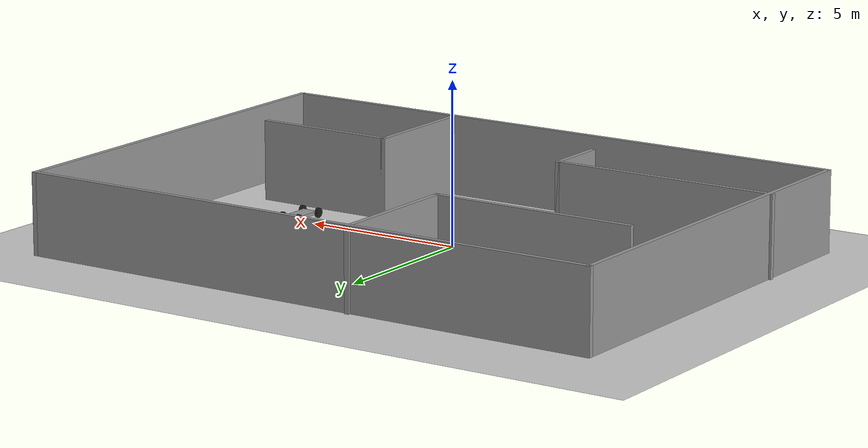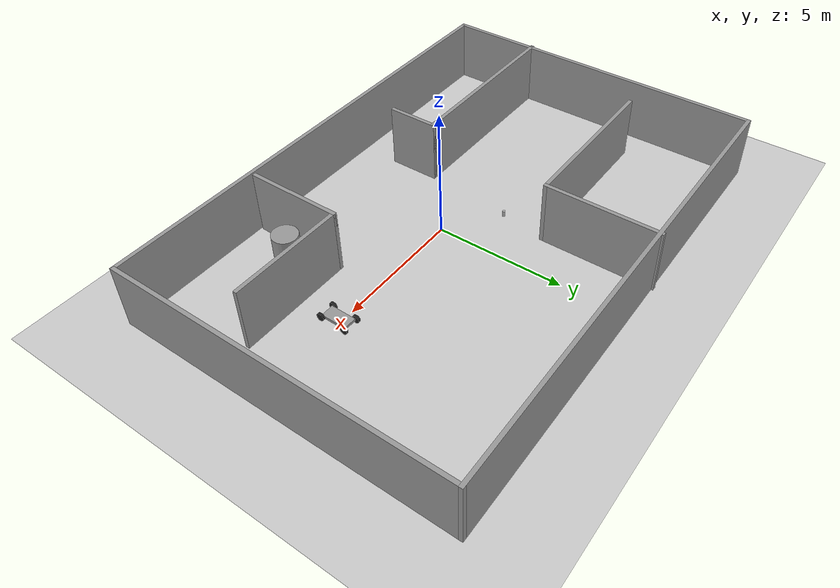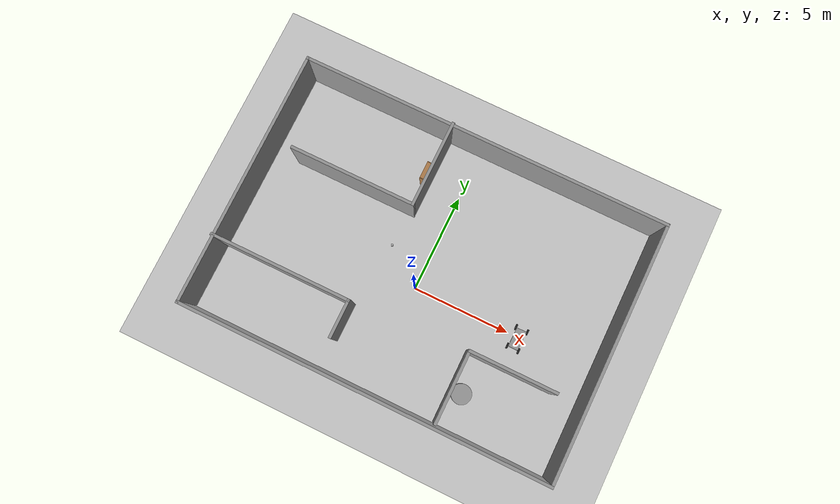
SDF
<sdf version="1.7">
 <world name="default">
  <light name="sun" type="directional">
   <pose>0 0 10 0 -0 0</pose>
   <diffuse>0.8 0.8 0.8 1</diffuse>
   <specular>0.2 0.2 0.2 1</specular>
   <attenuation>
    <range>1000</range>
    <constant>0.9</constant>
    <linear>0.01</linear>
    <quadratic>0.001</quadratic>
   </attenuation>
   <direction>-0.5 0.1 -0.9</direction>
   <spot><inner_angle>0</inner_angle><outer_angle>0</outer_angle><falloff>0</falloff></spot>
  </light>
  <model name="ground_plane">
   <static>1</static>
   <link name="link">
    <collision name="collision">
     <geometry><plane><normal>0 0 1</normal><size>100 100</size></plane></geometry>
     <surface><friction><ode><mu>100</mu><mu2>50</mu2></ode></friction></surface>
    </collision>
    <visual name="visual">
     <cast_shadows>0</cast_shadows>
     <geometry><plane><normal>0 0 1</normal><size>100 100</size></plane></geometry>
     <material>
      <script><uri>file://media/materials/scripts/gazebo.material</uri><name>Gazebo/Grey</name></script>
     </material>
    </visual>
   </link>
  </model>
  <gravity>0 0 -9.8</gravity>
  <magnetic_field>6e-06 2.3e-05 -4.2e-05</magnetic_field>
  <atmosphere type="adiabatic"/>
  <physics type="ode">
   <max_step_size>0.001</max_step_size>
   <real_time_factor>1</real_time_factor>
   <real_time_update_rate>1000</real_time_update_rate>
  </physics>
  <scene><ambient>0.4 0.4 0.4 1</ambient><background>0.7 0.7 0.7 1</background><shadows>1</shadows></scene>
  <audio><device>default</device></audio>
  <spherical_coordinates>
   <surface_model>EARTH_WGS84</surface_model>
   <latitude_deg>0</latitude_deg>
   <longitude_deg>0</longitude_deg>
   <elevation>0</elevation>
   <heading_deg>0</heading_deg>
  </spherical_coordinates>
  <model name="room">
   <pose>0.00505 1.04085 0 0 -0 0</pose>
   <link name="Wall_14">
    <collision name="Wall_14_Collision">
     <geometry><box><size>13.25 0.15 2.5</size></box></geometry>
     <pose>0 0 1.25 0 -0 0</pose>
    </collision>
    <visual name="Wall_14_Visual">
     <pose>0 0 1.25 0 -0 0</pose>
     <geometry><box><size>13.25 0.15 2.5</size></box></geometry>
     <material>
      <script><uri>file://media/materials/scripts/gazebo.material</uri><name>Gazebo/Grey</name></script>
      <ambient>1 1 1 1</ambient>
     </material>
     <meta><layer>0</layer></meta>
    </visual>
    <pose>-9.38962 -0.035378 0 0 -0 -1.5708</pose>
   </link>
   <link name="Wall_15">
    <collision name="Wall_15_Collision">
     <geometry><box><size>19 0.15 2.5</size></box></geometry>
     <pose>0 0 1.25 0 -0 0</pose>
    </collision>
    <visual name="Wall_15_Visual">
     <pose>0 0 1.25 0 -0 0</pose>
     <geometry><box><size>19 0.15 2.5</size></box></geometry>
     <material>
      <script><uri>file://media/materials/scripts/gazebo.material</uri><name>Gazebo/Grey</name></script>
      <ambient>1 1 1 1</ambient>
     </material>
     <meta><layer>0</layer></meta>
    </visual>
    <pose>0.035378 -6.58538 0 0 -0 0</pose>
   </link>
   <link name="Wall_16">
    <collision name="Wall_16_Collision">
     <geometry><box><size>13.25 0.15 2.5</size></box></geometry>
     <pose>0 0 1.25 0 -0 0</pose>
    </collision>
    <visual name="Wall_16_Visual">
     <pose>0 0 1.25 0 -0 0</pose>
     <geometry><box><size>13.25 0.15 2.5</size></box></geometry>
     <material>
      <script><uri>file://media/materials/scripts/gazebo.material</uri><name>Gazebo/Grey</name></script>
      <ambient>1 1 1 1</ambient>
     </material>
     <meta><layer>0</layer></meta>
    </visual>
    <pose>9.46038 -0.035378 0 0 -0 1.5708</pose>
   </link>
   <link name="Wall_17">
    <collision name="Wall_17_Collision">
     <geometry><box><size>19 0.15 2.5</size></box></geometry>
     <pose>0 0 1.25 0 -0 0</pose>
    </collision>
    <visual name="Wall_17_Visual">
     <pose>0 0 1.25 0 -0 0</pose>
     <geometry><box><size>19 0.15 2.5</size></box></geometry>
     <material>
      <script><uri>file://media/materials/scripts/gazebo.material</uri><name>Gazebo/Grey</name></script>
      <ambient>1 1 1 1</ambient>
     </material>
     <meta><layer>0</layer></meta>
    </visual>
    <pose>0.035378 6.51462 0 0 -0 3.14159</pose>
   </link>
   <link name="Wall_19">
    <collision name="Wall_19_Collision">
     <geometry><box><size>4.5 0.15 2.5</size></box></geometry>
     <pose>0 0 1.25 0 -0 0</pose>
    </collision>
    <visual name="Wall_19_Visual">
     <pose>0 0 1.25 0 -0 0</pose>
     <geometry><box><size>4.5 0.15 2.5</size></box></geometry>
     <material>
      <script><uri>file://media/materials/scripts/gazebo.material</uri><name>Gazebo/Grey</name></script>
      <ambient>1 1 1 1</ambient>
     </material>
     <meta><layer>0</layer></meta>
    </visual>
    <pose>-1.6771 4.41038 0 0 -0 -1.5708</pose>
   </link>
   <link name="Wall_20">
    <collision name="Wall_20_Collision">
     <geometry><box><size>6.5 0.15 2.5</size></box></geometry>
     <pose>0 0 1.25 0 -0 0</pose>
    </collision>
    <visual name="Wall_20_Visual">
     <pose>0 0 1.25 0 -0 0</pose>
     <geometry><box><size>6.5 0.15 2.5</size></box></geometry>
     <material>
      <script><uri>file://media/materials/scripts/gazebo.material</uri><name>Gazebo/Grey</name></script>
      <ambient>1 1 1 1</ambient>
     </material>
     <meta><layer>0</layer></meta>
    </visual>
    <pose>-4.8521 2.23538 0 0 -0 3.14159</pose>
   </link>
   <link name="Wall_22">
    <collision name="Wall_22_Collision">
     <geometry><box><size>7.25 0.15 2.5</size></box></geometry>
     <pose>0 0 1.25 0 -0 0</pose>
    </collision>
    <visual name="Wall_22_Visual">
     <pose>0 0 1.25 0 -0 0</pose>
     <geometry><box><size>7.25 0.15 2.5</size></box></geometry>
     <material>
      <script><uri>file://media/materials/scripts/gazebo.material</uri><name>Gazebo/Grey</name></script>
      <ambient>1 1 1 1</ambient>
     </material>
     <meta><layer>0</layer></meta>
    </visual>
    <pose>-5.91038 -3.10834 0 0 -0 0</pose>
   </link>
   <link name="Wall_23">
    <collision name="Wall_23_Collision">
     <geometry><box><size>2 0.15 2.5</size></box></geometry>
     <pose>0 0 1.25 0 -0 0</pose>
    </collision>
    <visual name="Wall_23_Visual">
     <pose>0 0 1.25 0 -0 0</pose>
     <geometry><box><size>2 0.15 2.5</size></box></geometry>
     <material>
      <script><uri>file://media/materials/scripts/gazebo.material</uri><name>Gazebo/Grey</name></script>
      <ambient>1 1 1 1</ambient>
     </material>
     <meta><layer>0</layer></meta>
    </visual>
    <pose>-2.36038 -4.03334 0 0 -0 -1.5708</pose>
   </link>
   <link name="Wall_25">
    <collision name="Wall_25_Collision">
     <geometry><box><size>3.75 0.15 2.5</size></box></geometry>
     <pose>0 0 1.25 0 -0 0</pose>
    </collision>
    <visual name="Wall_25_Visual">
     <pose>0 0 1.25 0 -0 0</pose>
     <geometry><box><size>3.75 0.15 2.5</size></box></geometry>
     <material>
      <script><uri>file://media/materials/scripts/gazebo.material</uri><name>Gazebo/Grey</name></script>
      <ambient>1 1 1 1</ambient>
     </material>
     <meta><layer>0</layer></meta>
    </visual>
    <pose>3.62968 -4.56316 0 0 -0 1.5708</pose>
   </link>
   <link name="Wall_26">
    <collision name="Wall_26_Collision">
     <geometry><box><size>4.5 0.15 2.5</size></box></geometry>
     <pose>0 0 1.25 0 -0 0</pose>
    </collision>
    <visual name="Wall_26_Visual">
     <pose>0 0 1.25 0 -0 0</pose>
     <geometry><box><size>4.5 0.15 2.5</size></box></geometry>
     <material>
      <script><uri>file://media/materials/scripts/gazebo.material</uri><name>Gazebo/Grey</name></script>
      <ambient>1 1 1 1</ambient>
     </material>
     <meta><layer>0</layer></meta>
    </visual>
    <pose>5.80468 -2.76316 0 0 -0 0</pose>
   </link>
   <static>1</static>
  </model>
  <model name="beer">
   <link name="link">
    <pose>0 0 0.115 0 -0 0</pose>
    <inertial>
     <mass>0.39</mass>
     <inertia><ixx>0.00058</ixx><ixy>0</ixy><ixz>0</ixz><iyy>0.00058</iyy><iyz>0</iyz><izz>0.00019</izz></inertia>
    </inertial>
    <collision name="collision">
     <geometry><cylinder><radius>0.055</radius><length>0.23</length></cylinder></geometry>
    </collision>
    <visual name="visual">
     <geometry><cylinder><radius>0.055</radius><length>0.23</length></cylinder></geometry>
     <material>
      <script>
       <uri>model://beer/materials/scripts</uri>
       <uri>model://beer/materials/textures</uri>
       <name>Beer/Diffuse</name>
      </script>
     </material>
    </visual>
   </link>
   <pose>-1.96527 1.43746 -2e-06 1e-06 -0 -3.5e-05</pose>
  </model>
  <model name="unit_cylinder_0">
   <pose>4.20974 -3.64611 0.499991 -0 -0 -3e-06</pose>
   <link name="link">
    <inertial>
     <mass>1</mass>
     <inertia><ixx>0.145833</ixx><ixy>0</ixy><ixz>0</ixz><iyy>0.145833</iyy><iyz>0</iyz><izz>0.125</izz></inertia>
    </inertial>
    <collision name="collision">
     <geometry><cylinder><radius>0.5</radius><length>1</length></cylinder></geometry>
    </collision>
    <visual name="visual">
     <geometry><cylinder><radius>0.5</radius><length>1</length></cylinder></geometry>
     <material>
      <script><name>Gazebo/Grey</name><uri>file://media/materials/scripts/gazebo.material</uri></script>
     </material>
    </visual>
   </link>
  </model>
  <model name="bookshelf">
   <static>1</static>
   <link name="link">
    <inertial><mass>1</mass></inertial>
    <collision name="back">
     <pose>0 0.005 0.6 0 -0 0</pose>
     <geometry><box><size>0.9 0.01 1.2</size></box></geometry>
    </collision>
    <visual name="visual1">
     <pose>0 0.005 0.6 0 -0 0</pose>
     <geometry><box><size>0.9 0.01 1.2</size></box></geometry>
     <material>
      <script><uri>file://media/materials/scripts/gazebo.material</uri><name>Gazebo/Wood</name></script>
     </material>
    </visual>
    <collision name="left_side">
     <pose>0.45 -0.195 0.6 0 -0 0</pose>
     <geometry><box><size>0.02 0.4 1.2</size></box></geometry>
    </collision>
    <visual name="visual2">
     <pose>0.45 -0.195 0.6 0 -0 0</pose>
     <geometry><box><size>0.02 0.4 1.2</size></box></geometry>
     <material>
      <script><uri>file://media/materials/scripts/gazebo.material</uri><name>Gazebo/Wood</name></script>
     </material>
    </visual>
    <collision name="right_side">
     <pose>-0.45 -0.195 0.6 0 -0 0</pose>
     <geometry><box><size>0.02 0.4 1.2</size></box></geometry>
    </collision>
    <visual name="visual3">
     <pose>-0.45 -0.195 0.6 0 -0 0</pose>
     <geometry><box><size>0.02 0.4 1.2</size></box></geometry>
     <material>
      <script><uri>file://media/materials/scripts/gazebo.material</uri><name>Gazebo/Wood</name></script>
     </material>
    </visual>
    <collision name="bottom">
     <pose>0 -0.195 0.03 0 -0 0</pose>
     <geometry><box><size>0.88 0.4 0.06</size></box></geometry>
    </collision>
    <visual name="visual4">
     <pose>0 -0.195 0.03 0 -0 0</pose>
     <geometry><box><size>0.88 0.4 0.06</size></box></geometry>
     <material>
      <script><uri>file://media/materials/scripts/gazebo.material</uri><name>Gazebo/Wood</name></script>
     </material>
    </visual>
    <collision name="top">
     <pose>0 -0.195 1.19 0 -0 0</pose>
     <geometry><box><size>0.88 0.4 0.02</size></box></geometry>
    </collision>
    <visual name="visual5">
     <pose>0 -0.195 1.19 0 -0 0</pose>
     <geometry><box><size>0.88 0.4 0.02</size></box></geometry>
     <material>
      <script><uri>file://media/materials/scripts/gazebo.material</uri><name>Gazebo/Wood</name></script>
     </material>
    </visual>
    <collision name="low_shelf">
     <pose>0 -0.195 0.43 0 -0 0</pose>
     <geometry><box><size>0.88 0.4 0.02</size></box></geometry>
    </collision>
    <visual name="visual6">
     <pose>0 -0.195 0.43 0 -0 0</pose>
     <geometry><box><size>0.88 0.4 0.02</size></box></geometry>
     <material>
      <script><uri>file://media/materials/scripts/gazebo.material</uri><name>Gazebo/Wood</name></script>
     </material>
    </visual>
    <collision name="high_shelf">
     <pose>0 -0.195 0.8 0 -0 0</pose>
     <geometry><box><size>0.88 0.4 0.02</size></box></geometry>
    </collision>
    <visual name="visual7">
     <pose>0 -0.195 0.8 0 -0 0</pose>
     <geometry><box><size>0.88 0.4 0.02</size></box></geometry>
     <material>
      <script><uri>file://media/materials/scripts/gazebo.material</uri><name>Gazebo/Wood</name></script>
     </material>
    </visual>
   </link>
   <pose>-1.71623 5.33769 0 0 0 -1.57147</pose>
  </model>
  <model name="cart_soft_suspension">
   <link name="chassis">
    <pose>0 0 0.15 0 -0 0</pose>
    <inertial>
     <pose>0.1 0 0 0 -0 0</pose>
     <mass>10</mass>
     <inertia>
      <ixx>0.216667</ixx>
      <iyy>0.841667</iyy>
      <izz>1.04167</izz>
      <ixy>0</ixy>
      <ixz>0</ixz>
      <iyz>0</iyz>
     </inertia>
    </inertial>
    <collision name="collision"><geometry><box><size>1 0.5 0.1</size></box></geometry></collision>
    <visual name="visual">
     <geometry><box><size>1 0.5 0.1</size></box></geometry>
     <material>
      <script><uri>file://media/materials/scripts/gazebo.material</uri><name>Gazebo/Grey</name></script>
     </material>
    </visual>
   </link>
   <link name="susp_front_right">
    <pose>0.5 -0.298 0.15 0 -0 0</pose>
    <inertial>
     <mass>0.5</mass>
     <inertia>
      <ixx>0.000208333</ixx>
      <iyy>0.000208333</iyy>
      <izz>0.000208333</izz>
      <ixy>0</ixy>
      <ixz>0</ixz>
      <iyz>0</iyz>
     </inertia>
    </inertial>
    <collision name="collision"><geometry><box><size>0.05 0.05 0.05</size></box></geometry></collision>
    <visual name="visual">
     <geometry><box><size>0.05 0.05 0.05</size></box></geometry>
     <material>
      <script><uri>file://media/materials/scripts/gazebo.material</uri><name>Gazebo/Black</name></script>
     </material>
    </visual>
   </link>
   <joint name="susp_front_right_prismatic" type="prismatic">
    <parent>chassis</parent>
    <child>susp_front_right</child>
    <axis>
     <xyz>0 0 -1</xyz>
     <limit><lower>-0.0375</lower><upper>0.0375</upper></limit>
     <dynamics>
      <damping>100</damping>
      <spring_stiffness>2500</spring_stiffness>
      <spring_reference>0.05</spring_reference>
     </dynamics>
    </axis>
    <physics>
     <ode><implicit_spring_damper>1</implicit_spring_damper><limit><cfm>0</cfm><erp>0.2</erp></limit></ode>
    </physics>
   </joint>
   <link name="wheel_front_right">
    <pose>0.5 -0.298 0.15 -1.5708 0 0</pose>
    <inertial>
     <mass>0.5</mass>
     <inertia>
      <ixx>0.00307917</ixx>
      <iyy>0.00307917</iyy>
      <izz>0.005625</izz>
      <ixy>0</ixy>
      <ixz>0</ixz>
      <iyz>0</iyz>
     </inertia>
    </inertial>
    <collision name="collision">
     <geometry><cylinder><radius>0.15</radius><length>0.08</length></cylinder></geometry>
    </collision>
    <visual name="visual">
     <geometry><cylinder><radius>0.15</radius><length>0.08</length></cylinder></geometry>
     <material>
      <script><uri>file://media/materials/scripts/gazebo.material</uri><name>Gazebo/Black</name></script>
     </material>
    </visual>
   </link>
   <joint name="wheel_front_right_spin" type="revolute">
    <parent>susp_front_right</parent>
    <child>wheel_front_right</child>
    <axis>
     <xyz>0 0 1</xyz>
     <limit><lower>-1e+16</lower><upper>1e+16</upper></limit>
     <dynamics><spring_reference>0</spring_reference><spring_stiffness>0</spring_stiffness></dynamics>
    </axis>
   </joint>
   <link name="susp_front_left">
    <pose>0.5 0.298 0.15 0 -0 0</pose>
    <inertial>
     <mass>0.5</mass>
     <inertia>
      <ixx>0.000208333</ixx>
      <iyy>0.000208333</iyy>
      <izz>0.000208333</izz>
      <ixy>0</ixy>
      <ixz>0</ixz>
      <iyz>0</iyz>
     </inertia>
    </inertial>
    <collision name="collision"><geometry><box><size>0.05 0.05 0.05</size></box></geometry></collision>
    <visual name="visual">
     <geometry><box><size>0.05 0.05 0.05</size></box></geometry>
     <material>
      <script><uri>file://media/materials/scripts/gazebo.material</uri><name>Gazebo/Black</name></script>
     </material>
    </visual>
   </link>
   <joint name="susp_front_left_prismatic" type="prismatic">
    <parent>chassis</parent>
    <child>susp_front_left</child>
    <axis>
     <xyz>0 0 -1</xyz>
     <limit><lower>-0.0375</lower><upper>0.0375</upper></limit>
     <dynamics>
      <damping>100</damping>
      <spring_stiffness>2500</spring_stiffness>
      <spring_reference>0.05</spring_reference>
     </dynamics>
    </axis>
    <physics>
     <ode><implicit_spring_damper>1</implicit_spring_damper><limit><cfm>0</cfm><erp>0.2</erp></limit></ode>
    </physics>
   </joint>
   <link name="wheel_front_left">
    <pose>0.5 0.298 0.15 -1.5708 0 0</pose>
    <inertial>
     <mass>0.5</mass>
     <inertia>
      <ixx>0.00307917</ixx>
      <iyy>0.00307917</iyy>
      <izz>0.005625</izz>
      <ixy>0</ixy>
      <ixz>0</ixz>
      <iyz>0</iyz>
     </inertia>
    </inertial>
    <collision name="collision">
     <geometry><cylinder><radius>0.15</radius><length>0.08</length></cylinder></geometry>
    </collision>
    <visual name="visual">
     <geometry><cylinder><radius>0.15</radius><length>0.08</length></cylinder></geometry>
     <material>
      <script><uri>file://media/materials/scripts/gazebo.material</uri><name>Gazebo/Black</name></script>
     </material>
    </visual>
   </link>
   <joint name="wheel_front_left_spin" type="revolute">
    <parent>susp_front_left</parent>
    <child>wheel_front_left</child>
    <axis>
     <xyz>0 0 1</xyz>
     <limit><lower>-1e+16</lower><upper>1e+16</upper></limit>
     <dynamics><spring_reference>0</spring_reference><spring_stiffness>0</spring_stiffness></dynamics>
    </axis>
   </joint>
   <link name="susp_rear_right">
    <pose>-0.5 -0.298 0.15 0 -0 0</pose>
    <inertial>
     <mass>0.5</mass>
     <inertia>
      <ixx>0.000208333</ixx>
      <iyy>0.000208333</iyy>
      <izz>0.000208333</izz>
      <ixy>0</ixy>
      <ixz>0</ixz>
      <iyz>0</iyz>
     </inertia>
    </inertial>
    <collision name="collision"><geometry><box><size>0.05 0.05 0.05</size></box></geometry></collision>
    <visual name="visual">
     <geometry><box><size>0.05 0.05 0.05</size></box></geometry>
     <material>
      <script><uri>file://media/materials/scripts/gazebo.material</uri><name>Gazebo/Black</name></script>
     </material>
    </visual>
   </link>
   <joint name="susp_rear_right_prismatic" type="prismatic">
    <parent>chassis</parent>
    <child>susp_rear_right</child>
    <axis>
     <xyz>0 0 -1</xyz>
     <limit><lower>-0.0375</lower><upper>0.0375</upper></limit>
     <dynamics>
      <damping>100</damping>
      <spring_stiffness>2500</spring_stiffness>
      <spring_reference>0.05</spring_reference>
     </dynamics>
    </axis>
    <physics>
     <ode><implicit_spring_damper>1</implicit_spring_damper><limit><cfm>0</cfm><erp>0.2</erp></limit></ode>
    </physics>
   </joint>
   <link name="wheel_rear_right">
    <pose>-0.5 -0.298 0.15 -1.5708 0 0</pose>
    <inertial>
     <mass>0.5</mass>
     <inertia>
      <ixx>0.00307917</ixx>
      <iyy>0.00307917</iyy>
      <izz>0.005625</izz>
      <ixy>0</ixy>
      <ixz>0</ixz>
      <iyz>0</iyz>
     </inertia>
    </inertial>
    <collision name="collision">
     <geometry><cylinder><radius>0.15</radius><length>0.08</length></cylinder></geometry>
    </collision>
    <visual name="visual">
     <geometry><cylinder><radius>0.15</radius><length>0.08</length></cylinder></geometry>
     <material>
      <script><uri>file://media/materials/scripts/gazebo.material</uri><name>Gazebo/Black</name></script>
     </material>
    </visual>
   </link>
   <joint name="wheel_rear_right_spin" type="revolute">
    <parent>susp_rear_right</parent>
    <child>wheel_rear_right</child>
    <axis>
     <xyz>0 0 1</xyz>
     <limit><lower>-1e+16</lower><upper>1e+16</upper></limit>
     <dynamics><spring_reference>0</spring_reference><spring_stiffness>0</spring_stiffness></dynamics>
    </axis>
   </joint>
   <link name="susp_rear_left">
    <pose>-0.5 0.298 0.15 0 -0 0</pose>
    <inertial>
     <mass>0.5</mass>
     <inertia>
      <ixx>0.000208333</ixx>
      <iyy>0.000208333</iyy>
      <izz>0.000208333</izz>
      <ixy>0</ixy>
      <ixz>0</ixz>
      <iyz>0</iyz>
     </inertia>
    </inertial>
    <collision name="collision"><geometry><box><size>0.05 0.05 0.05</size></box></geometry></collision>
    <visual name="visual">
     <geometry><box><size>0.05 0.05 0.05</size></box></geometry>
     <material>
      <script><uri>file://media/materials/scripts/gazebo.material</uri><name>Gazebo/Black</name></script>
     </material>
    </visual>
   </link>
   <joint name="susp_rear_left_prismatic" type="prismatic">
    <parent>chassis</parent>
    <child>susp_rear_left</child>
    <axis>
     <xyz>0 0 -1</xyz>
     <limit><lower>-0.0375</lower><upper>0.0375</upper></limit>
     <dynamics>
      <damping>100</damping>
      <spring_stiffness>2500</spring_stiffness>
      <spring_reference>0.05</spring_reference>
     </dynamics>
    </axis>
    <physics>
     <ode><implicit_spring_damper>1</implicit_spring_damper><limit><cfm>0</cfm><erp>0.2</erp></limit></ode>
    </physics>
   </joint>
   <link name="wheel_rear_left">
    <pose>-0.5 0.298 0.15 -1.5708 0 0</pose>
    <inertial>
     <mass>0.5</mass>
     <inertia>
      <ixx>0.00307917</ixx>
      <iyy>0.00307917</iyy>
      <izz>0.005625</izz>
      <ixy>0</ixy>
      <ixz>0</ixz>
      <iyz>0</iyz>
     </inertia>
    </inertial>
    <collision name="collision">
     <geometry><cylinder><radius>0.15</radius><length>0.08</length></cylinder></geometry>
    </collision>
    <visual name="visual">
     <geometry><cylinder><radius>0.15</radius><length>0.08</length></cylinder></geometry>
     <material>
      <script><uri>file://media/materials/scripts/gazebo.material</uri><name>Gazebo/Black</name></script>
     </material>
    </visual>
   </link>
   <joint name="wheel_rear_left_spin" type="revolute">
    <parent>susp_rear_left</parent>
    <child>wheel_rear_left</child>
    <axis>
     <xyz>0 0 1</xyz>
     <limit><lower>-1e+16</lower><upper>1e+16</upper></limit>
     <dynamics><spring_reference>0</spring_reference><spring_stiffness>0</spring_stiffness></dynamics>
    </axis>
   </joint>
   <pose>5.57313 -0.079171 0.037473 -7.6e-05 0.000106 -1.58301</pose>
  </model>
 </world>
</sdf>
